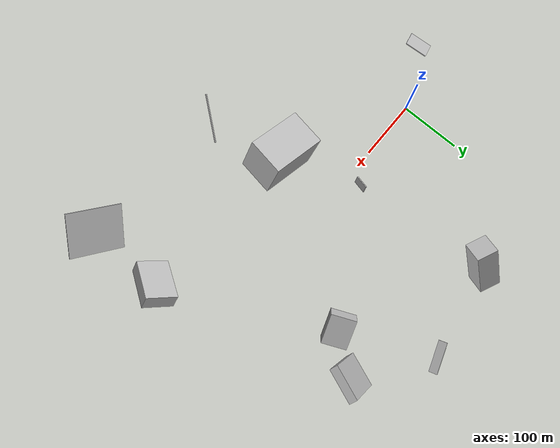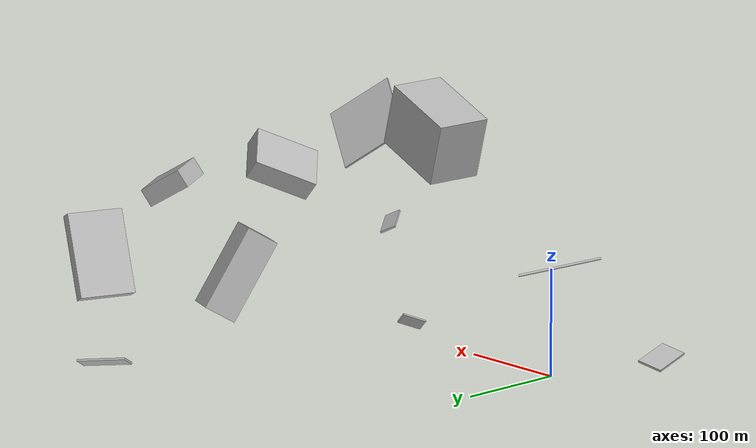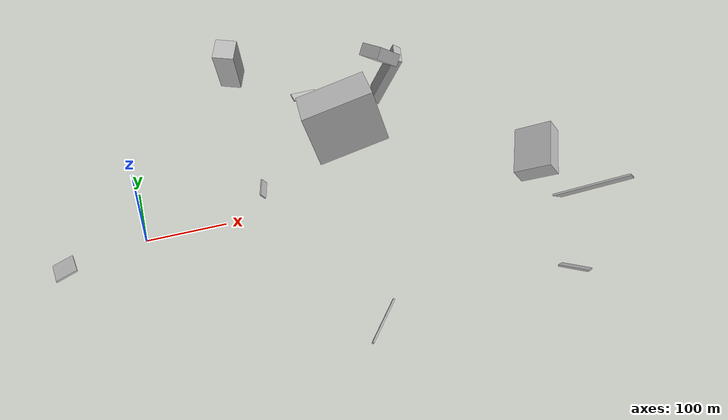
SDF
<sdf version="1.6">
 <world name="default">
  <scene>
   <sky><clouds><speed>12</speed></clouds></sky>
   <ambient>0.4 0.4 0.4 1</ambient>
   <background>0.7 0.7 0.7 1</background>
   <shadows>1</shadows>
  </scene>
  <gravity>0 0 -9.8066</gravity>
  <magnetic_field>6e-06 2.3e-05 -4.2e-05</magnetic_field>
  <physics default="0" name="default_physics" type="ode">
   <ode>
    <solver>
     <type>quick</type>
     <iters>10</iters>
     <sor>1.0</sor>
     <use_dynamic_moi_rescaling>0</use_dynamic_moi_rescaling>
    </solver>
    <constraints>
     <cfm>0</cfm>
     <erp>0.2</erp>
     <contact_max_correcting_vel>100</contact_max_correcting_vel>
     <contact_surface_layer>0.001</contact_surface_layer>
    </constraints>
   </ode>
   <max_step_size>0.004</max_step_size>
   <real_time_factor>1</real_time_factor>
   <real_time_update_rate>250</real_time_update_rate>
  </physics>
  <light name="sun" type="directional">
   <pose>0 0 10 0 0 0</pose>
   <diffuse>0.8 0.8 0.8 1</diffuse>
   <specular>0.2 0.2 0.2 1</specular>
   <attenuation>
    <range>1000</range>
    <constant>0.9</constant>
    <linear>0.01</linear>
    <quadratic>0.001</quadratic>
   </attenuation>
   <direction>-0.5 0.1 -0.9</direction>
  </light>
  <model name="building_1">
   <static>0</static>
   <pose>240.99006577150027 -76.93833845559588 145.80632688771166 0.03107400577662386 0.3265908929014104 2.998279314807143</pose>
   <link name="link">
    <gravity>0</gravity>
    <pose>0 0 30.5 0 0 0</pose>
    <collision name="collision"><geometry><box><size>80 52 61</size></box></geometry></collision>
    <visual name="visual">
     <cast_shadows>0</cast_shadows>
     <geometry><box><size>80 52 61</size></box></geometry>
     <material>
      <script>
       <uri>model://HANNAS_wall/materials/scripts</uri>
       <uri>model://HANNAS_wall/materials/textures</uri>
       <name>vrc/HANNAS_wall</name>
      </script>
     </material>
    </visual>
   </link>
  </model>
  <model name="building_2">
   <static>0</static>
   <pose>365.91604372673225 138.06697760545507 144.53526732167177 -2.5973418588744157 0.12642120231944967 1.9967226170646617</pose>
   <link name="link">
    <gravity>0</gravity>
    <pose>0 0 9.0 0 0 0</pose>
    <collision name="collision"><geometry><box><size>36 45 18</size></box></geometry></collision>
    <visual name="visual">
     <cast_shadows>0</cast_shadows>
     <geometry><box><size>36 45 18</size></box></geometry>
     <material>
      <script>
       <uri>model://HANNAS_wall/materials/scripts</uri>
       <uri>model://HANNAS_wall/materials/textures</uri>
       <name>vrc/HANNAS_wall</name>
      </script>
     </material>
    </visual>
   </link>
  </model>
  <model name="building_3">
   <static>0</static>
   <pose>403.3456873737202 191.83034971350045 68.68309398444075 0.019600319009812274 1.1357797860293195 2.803406185094525</pose>
   <link name="link">
    <gravity>0</gravity>
    <pose>0 0 6.5 0 0 0</pose>
    <collision name="collision"><geometry><box><size>80 53 13</size></box></geometry></collision>
    <visual name="visual">
     <cast_shadows>0</cast_shadows>
     <geometry><box><size>80 53 13</size></box></geometry>
     <material>
      <script>
       <uri>model://HANNAS_wall/materials/scripts</uri>
       <uri>model://HANNAS_wall/materials/textures</uri>
       <name>vrc/HANNAS_wall</name>
      </script>
     </material>
    </visual>
   </link>
  </model>
  <model name="building_4">
   <static>0</static>
   <pose>287.9856752703758 281.4919205081183 8.55691204633036 2.5939314370753976 -0.152519180040918 -2.7802626446577534</pose>
   <link name="link">
    <gravity>0</gravity>
    <pose>0 0 1.0 0 0 0</pose>
    <collision name="collision"><geometry><box><size>50 14 2</size></box></geometry></collision>
    <visual name="visual">
     <cast_shadows>0</cast_shadows>
     <geometry><box><size>50 14 2</size></box></geometry>
     <material>
      <script>
       <uri>model://HANNAS_wall/materials/scripts</uri>
       <uri>model://HANNAS_wall/materials/textures</uri>
       <name>vrc/HANNAS_wall</name>
      </script>
     </material>
    </visual>
   </link>
  </model>
  <model name="building_5">
   <static>0</static>
   <pose>462.3707297985305 -128.32622711224639 81.79218289178027 -1.0909995752605155 -0.5282996319662073 -0.7697528841693353</pose>
   <link name="link">
    <gravity>0</gravity>
    <pose>0 0 32.0 0 0 0</pose>
    <collision name="collision"><geometry><box><size>47 23 64</size></box></geometry></collision>
    <visual name="visual">
     <cast_shadows>0</cast_shadows>
     <geometry><box><size>47 23 64</size></box></geometry>
     <material>
      <script>
       <uri>model://HANNAS_wall/materials/scripts</uri>
       <uri>model://HANNAS_wall/materials/textures</uri>
       <name>vrc/HANNAS_wall</name>
      </script>
     </material>
    </visual>
   </link>
  </model>
  <model name="building_6">
   <static>0</static>
   <pose>444.45908915470693 -193.76689288056804 99.4279451715002 0.8797583336937931 -0.7522336008804723 1.5507606212578604</pose>
   <link name="link">
    <gravity>0</gravity>
    <pose>0 0 40.0 0 0 0</pose>
    <collision name="collision"><geometry><box><size>2 68 80</size></box></geometry></collision>
    <visual name="visual">
     <cast_shadows>0</cast_shadows>
     <geometry><box><size>2 68 80</size></box></geometry>
     <material>
      <script>
       <uri>model://HANNAS_wall/materials/scripts</uri>
       <uri>model://HANNAS_wall/materials/textures</uri>
       <name>vrc/HANNAS_wall</name>
      </script>
     </material>
    </visual>
   </link>
  </model>
  <model name="building_7">
   <static>0</static>
   <pose>153.56993165354118 223.7102146904247 99.90395604928307 1.0268959712106864 -0.04505056362724008 2.7240729808668385</pose>
   <link name="link">
    <gravity>0</gravity>
    <pose>0 0 15.5 0 0 0</pose>
    <collision name="collision"><geometry><box><size>31 80 31</size></box></geometry></collision>
    <visual name="visual">
     <cast_shadows>0</cast_shadows>
     <geometry><box><size>31 80 31</size></box></geometry>
     <material>
      <script>
       <uri>model://HANNAS_wall/materials/scripts</uri>
       <uri>model://HANNAS_wall/materials/textures</uri>
       <name>vrc/HANNAS_wall</name>
      </script>
     </material>
    </visual>
   </link>
  </model>
  <model name="building_8">
   <static>0</static>
   <pose>223.530500481941 -230.411370040246 17.031713675584125 -0.6517363820126831 -0.19745333928834816 -2.2482338436600426</pose>
   <link name="link">
    <gravity>0</gravity>
    <pose>0 0 1.0 0 0 0</pose>
    <collision name="collision"><geometry><box><size>80 2 2</size></box></geometry></collision>
    <visual name="visual">
     <cast_shadows>0</cast_shadows>
     <geometry><box><size>80 2 2</size></box></geometry>
     <material>
      <script>
       <uri>model://HANNAS_wall/materials/scripts</uri>
       <uri>model://HANNAS_wall/materials/textures</uri>
       <name>vrc/HANNAS_wall</name>
      </script>
     </material>
    </visual>
   </link>
  </model>
  <model name="building_9">
   <static>0</static>
   <pose>152.76934808465407 14.474661786076284 20.21351656883 0.9479473255927178 -0.8812886648568495 -2.9533373596460986</pose>
   <link name="link">
    <gravity>0</gravity>
    <pose>0 0 12.0 0 0 0</pose>
    <collision name="collision"><geometry><box><size>11 2 24</size></box></geometry></collision>
    <visual name="visual">
     <cast_shadows>0</cast_shadows>
     <geometry><box><size>11 2 24</size></box></geometry>
     <material>
      <script>
       <uri>model://HANNAS_wall/materials/scripts</uri>
       <uri>model://HANNAS_wall/materials/textures</uri>
       <name>vrc/HANNAS_wall</name>
      </script>
     </material>
    </visual>
   </link>
  </model>
  <model name="building_10">
   <static>0</static>
   <pose>450.2916489781444 -217.22528882234064 14.504219639685939 1.0608890327118994 -1.0473376285927718 1.1199476551312748</pose>
   <link name="link">
    <gravity>0</gravity>
    <pose>0 0 17.0 0 0 0</pose>
    <collision name="collision"><geometry><box><size>2 16 34</size></box></geometry></collision>
    <visual name="visual">
     <cast_shadows>0</cast_shadows>
     <geometry><box><size>2 16 34</size></box></geometry>
     <material>
      <script>
       <uri>model://HANNAS_wall/materials/scripts</uri>
       <uri>model://HANNAS_wall/materials/textures</uri>
       <name>vrc/HANNAS_wall</name>
      </script>
     </material>
    </visual>
   </link>
  </model>
  <model name="building_11">
   <static>0</static>
   <pose>-78.81011236477661 -47.07853718124139 29.240868689326668 -2.404109289775068 -1.2558011728687697 2.5993149789029433</pose>
   <link name="link">
    <gravity>0</gravity>
    <pose>0 0 12.0 0 0 0</pose>
    <collision name="collision"><geometry><box><size>2 38 24</size></box></geometry></collision>
    <visual name="visual">
     <cast_shadows>0</cast_shadows>
     <geometry><box><size>2 38 24</size></box></geometry>
     <material>
      <script>
       <uri>model://HANNAS_wall/materials/scripts</uri>
       <uri>model://HANNAS_wall/materials/textures</uri>
       <name>vrc/HANNAS_wall</name>
      </script>
     </material>
    </visual>
   </link>
  </model>
 </world>
</sdf>
